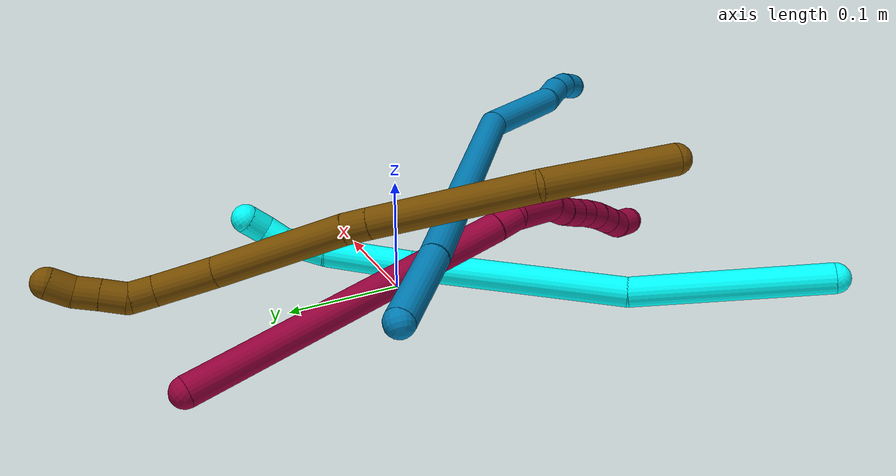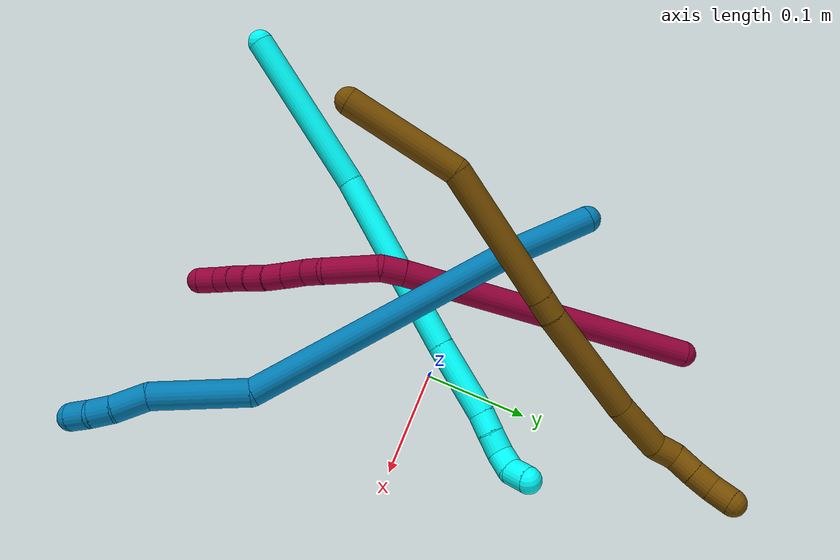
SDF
<sdf version="1.7">
 <world name="default">
  <model name="3">
   <static>0</static>
   <link name="3">
    <collision name="collision-cylinder-e_1_1_4">
     <pose>0.021062 0.045059 -0.064751 -2.53364 0.260905 -0.792243</pose>
     <geometry><cylinder><radius>0.0125</radius><length>0.163298</length></cylinder></geometry>
     <surface>
      <friction><ode><mu>1.16</mu><mu2>1.16</mu2><slip1>0</slip1><slip2>0</slip2></ode></friction>
      <contact><ode><kp>1e+06</kp><kd>1</kd><max_vel>0</max_vel><min_depth>0.001</min_depth></ode></contact>
     </surface>
    </collision>
    <visual name="visual-cylinder-e_1_1_4">
     <pose>0.021062 0.045059 -0.064751 -2.53364 0.260905 -0.792243</pose>
     <geometry><cylinder><radius>0.0125</radius><length>0.163298</length></cylinder></geometry>
     <material><ambient>0.003922 1 0.996078 1</ambient></material>
    </visual>
    <collision name="collision-cylinder-e_2_4_5">
     <pose>0.081304 0.141392 -0.19421 -2.4715 0.443092 -1.14843</pose>
     <geometry><cylinder><radius>0.0125</radius><length>0.182772</length></cylinder></geometry>
     <surface>
      <friction><ode><mu>1.16</mu><mu2>1.16</mu2><slip1>0</slip1><slip2>0</slip2></ode></friction>
      <contact><ode><kp>1e+06</kp><kd>1</kd><max_vel>0</max_vel><min_depth>0.001</min_depth></ode></contact>
     </surface>
    </collision>
    <visual name="visual-cylinder-e_2_4_5">
     <pose>0.081304 0.141392 -0.19421 -2.4715 0.443092 -1.14843</pose>
     <geometry><cylinder><radius>0.0125</radius><length>0.182772</length></cylinder></geometry>
     <material><ambient>0.003922 1 0.996078 1</ambient></material>
    </visual>
    <collision name="collision-cylinder-e_3_5_6">
     <pose>0.136883 0.214837 -0.283464 -2.40701 0.460293 -1.09397</pose>
     <geometry><cylinder><radius>0.0125</radius><length>0.073834</length></cylinder></geometry>
     <surface>
      <friction><ode><mu>1.16</mu><mu2>1.16</mu2><slip1>0</slip1><slip2>0</slip2></ode></friction>
      <contact><ode><kp>1e+06</kp><kd>1</kd><max_vel>0</max_vel><min_depth>0.001</min_depth></ode></contact>
     </surface>
    </collision>
    <visual name="visual-cylinder-e_3_5_6">
     <pose>0.136883 0.214837 -0.283464 -2.40701 0.460293 -1.09397</pose>
     <geometry><cylinder><radius>0.0125</radius><length>0.073834</length></cylinder></geometry>
     <material><ambient>0.003922 1 0.996078 1</ambient></material>
    </visual>
    <collision name="collision-cylinder-e_4_6_7">
     <pose>0.158918 0.242409 -0.31432 -2.43356 0.596106 -1.38696</pose>
     <geometry><cylinder><radius>0.0125</radius><length>0.020077</length></cylinder></geometry>
     <surface>
      <friction><ode><mu>1.16</mu><mu2>1.16</mu2><slip1>0</slip1><slip2>0</slip2></ode></friction>
      <contact><ode><kp>1e+06</kp><kd>1</kd><max_vel>0</max_vel><min_depth>0.001</min_depth></ode></contact>
     </surface>
    </collision>
    <visual name="visual-cylinder-e_4_6_7">
     <pose>0.158918 0.242409 -0.31432 -2.43356 0.596106 -1.38696</pose>
     <geometry><cylinder><radius>0.0125</radius><length>0.020077</length></cylinder></geometry>
     <material><ambient>0.003922 1 0.996078 1</ambient></material>
    </visual>
    <collision name="collision-cylinder-e_5_7_8">
     <pose>0.169442 0.253102 -0.327569 -2.49011 0.510624 -1.31579</pose>
     <geometry><cylinder><radius>0.0125</radius><length>0.020004</length></cylinder></geometry>
     <surface>
      <friction><ode><mu>1.16</mu><mu2>1.16</mu2><slip1>0</slip1><slip2>0</slip2></ode></friction>
      <contact><ode><kp>1e+06</kp><kd>1</kd><max_vel>0</max_vel><min_depth>0.001</min_depth></ode></contact>
     </surface>
    </collision>
    <visual name="visual-cylinder-e_5_7_8">
     <pose>0.169442 0.253102 -0.327569 -2.49011 0.510624 -1.31579</pose>
     <geometry><cylinder><radius>0.0125</radius><length>0.020004</length></cylinder></geometry>
     <material><ambient>0.003922 1 0.996078 1</ambient></material>
    </visual>
    <collision name="collision-cylinder-e_6_8_9">
     <pose>0.18132 0.265051 -0.33714 -1.9473 0.773395 -1.07916</pose>
     <geometry><cylinder><radius>0.0125</radius><length>0.020012</length></cylinder></geometry>
     <surface>
      <friction><ode><mu>1.16</mu><mu2>1.16</mu2><slip1>0</slip1><slip2>0</slip2></ode></friction>
      <contact><ode><kp>1e+06</kp><kd>1</kd><max_vel>0</max_vel><min_depth>0.001</min_depth></ode></contact>
     </surface>
    </collision>
    <visual name="visual-cylinder-e_6_8_9">
     <pose>0.18132 0.265051 -0.33714 -1.9473 0.773395 -1.07916</pose>
     <geometry><cylinder><radius>0.0125</radius><length>0.020012</length></cylinder></geometry>
     <material><ambient>0.003922 1 0.996078 1</ambient></material>
    </visual>
    <collision name="collision-cylinder-e_7_9_2">
     <pose>0.192648 0.280705 -0.339237 -1.51139 0.448702 -0.423597</pose>
     <geometry><cylinder><radius>0.0125</radius><length>0.020003</length></cylinder></geometry>
     <surface>
      <friction><ode><mu>1.16</mu><mu2>1.16</mu2><slip1>0</slip1><slip2>0</slip2></ode></friction>
      <contact><ode><kp>1e+06</kp><kd>1</kd><max_vel>0</max_vel><min_depth>0.001</min_depth></ode></contact>
     </surface>
    </collision>
    <visual name="visual-cylinder-e_7_9_2">
     <pose>0.192648 0.280705 -0.339237 -1.51139 0.448702 -0.423597</pose>
     <geometry><cylinder><radius>0.0125</radius><length>0.020003</length></cylinder></geometry>
     <material><ambient>0.003922 1 0.996078 1</ambient></material>
    </visual>
    <collision name="collision-sphere-2">
     <pose>0.196987 0.289701 -0.338702 0 -0 0</pose>
     <geometry><sphere><radius>0.0125</radius></sphere></geometry>
     <surface>
      <friction><ode><mu>1.16</mu><mu2>1.16</mu2><slip1>0</slip1><slip2>0</slip2></ode></friction>
      <contact><ode><kp>1e+06</kp><kd>1</kd><max_vel>0</max_vel><min_depth>0.001</min_depth></ode></contact>
     </surface>
    </collision>
    <visual name="visual-sphere-2">
     <pose>0.196987 0.289701 -0.338702 0 -0 0</pose>
     <geometry><sphere><radius>0.0125</radius></sphere></geometry>
     <material><ambient>0.003922 1 0.996078 1</ambient></material>
    </visual>
    <collision name="collision-sphere-9">
     <pose>0.18831 0.271709 -0.339772 0 -0 0</pose>
     <geometry><sphere><radius>0.0125</radius></sphere></geometry>
     <surface>
      <friction><ode><mu>1.16</mu><mu2>1.16</mu2><slip1>0</slip1><slip2>0</slip2></ode></friction>
      <contact><ode><kp>1e+06</kp><kd>1</kd><max_vel>0</max_vel><min_depth>0.001</min_depth></ode></contact>
     </surface>
    </collision>
    <visual name="visual-sphere-9">
     <pose>0.18831 0.271709 -0.339772 0 -0 0</pose>
     <geometry><sphere><radius>0.0125</radius></sphere></geometry>
     <material><ambient>0.003922 1 0.996078 1</ambient></material>
    </visual>
    <collision name="collision-sphere-4">
     <pose>0.042124 0.090117 -0.129502 0 -0 0</pose>
     <geometry><sphere><radius>0.0125</radius></sphere></geometry>
     <surface>
      <friction><ode><mu>1.16</mu><mu2>1.16</mu2><slip1>0</slip1><slip2>0</slip2></ode></friction>
      <contact><ode><kp>1e+06</kp><kd>1</kd><max_vel>0</max_vel><min_depth>0.001</min_depth></ode></contact>
     </surface>
    </collision>
    <visual name="visual-sphere-4">
     <pose>0.042124 0.090117 -0.129502 0 -0 0</pose>
     <geometry><sphere><radius>0.0125</radius></sphere></geometry>
     <material><ambient>0.003922 1 0.996078 1</ambient></material>
    </visual>
    <collision name="collision-sphere-1">
     <geometry><sphere><radius>0.0125</radius></sphere></geometry>
     <surface>
      <friction><ode><mu>1.16</mu><mu2>1.16</mu2><slip1>0</slip1><slip2>0</slip2></ode></friction>
      <contact><ode><kp>1e+06</kp><kd>1</kd><max_vel>0</max_vel><min_depth>0.001</min_depth></ode></contact>
     </surface>
    </collision>
    <visual name="visual-sphere-1">
     <geometry><sphere><radius>0.0125</radius></sphere></geometry>
     <material><ambient>0.003922 1 0.996078 1</ambient></material>
    </visual>
    <collision name="collision-sphere-8">
     <pose>0.17433 0.258393 -0.334508 0 -0 0</pose>
     <geometry><sphere><radius>0.0125</radius></sphere></geometry>
     <surface>
      <friction><ode><mu>1.16</mu><mu2>1.16</mu2><slip1>0</slip1><slip2>0</slip2></ode></friction>
      <contact><ode><kp>1e+06</kp><kd>1</kd><max_vel>0</max_vel><min_depth>0.001</min_depth></ode></contact>
     </surface>
    </collision>
    <visual name="visual-sphere-8">
     <pose>0.17433 0.258393 -0.334508 0 -0 0</pose>
     <geometry><sphere><radius>0.0125</radius></sphere></geometry>
     <material><ambient>0.003922 1 0.996078 1</ambient></material>
    </visual>
    <collision name="collision-sphere-5">
     <pose>0.120484 0.192668 -0.258919 0 -0 0</pose>
     <geometry><sphere><radius>0.0125</radius></sphere></geometry>
     <surface>
      <friction><ode><mu>1.16</mu><mu2>1.16</mu2><slip1>0</slip1><slip2>0</slip2></ode></friction>
      <contact><ode><kp>1e+06</kp><kd>1</kd><max_vel>0</max_vel><min_depth>0.001</min_depth></ode></contact>
     </surface>
    </collision>
    <visual name="visual-sphere-5">
     <pose>0.120484 0.192668 -0.258919 0 -0 0</pose>
     <geometry><sphere><radius>0.0125</radius></sphere></geometry>
     <material><ambient>0.003922 1 0.996078 1</ambient></material>
    </visual>
    <collision name="collision-sphere-6">
     <pose>0.153282 0.237006 -0.308009 0 -0 0</pose>
     <geometry><sphere><radius>0.0125</radius></sphere></geometry>
     <surface>
      <friction><ode><mu>1.16</mu><mu2>1.16</mu2><slip1>0</slip1><slip2>0</slip2></ode></friction>
      <contact><ode><kp>1e+06</kp><kd>1</kd><max_vel>0</max_vel><min_depth>0.001</min_depth></ode></contact>
     </surface>
    </collision>
    <visual name="visual-sphere-6">
     <pose>0.153282 0.237006 -0.308009 0 -0 0</pose>
     <geometry><sphere><radius>0.0125</radius></sphere></geometry>
     <material><ambient>0.003922 1 0.996078 1</ambient></material>
    </visual>
    <collision name="collision-sphere-7">
     <pose>0.164554 0.247811 -0.32063 0 -0 0</pose>
     <geometry><sphere><radius>0.0125</radius></sphere></geometry>
     <surface>
      <friction><ode><mu>1.16</mu><mu2>1.16</mu2><slip1>0</slip1><slip2>0</slip2></ode></friction>
      <contact><ode><kp>1e+06</kp><kd>1</kd><max_vel>0</max_vel><min_depth>0.001</min_depth></ode></contact>
     </surface>
    </collision>
    <visual name="visual-sphere-7">
     <pose>0.164554 0.247811 -0.32063 0 -0 0</pose>
     <geometry><sphere><radius>0.0125</radius></sphere></geometry>
     <material><ambient>0.003922 1 0.996078 1</ambient></material>
    </visual>
    <inertial>
     <pose>0.084937 0.139824 -0.18679 0 -0 0</pose>
     <mass>0.5</mass>
     <inertia>
      <ixx>-0.000238</ixx>
      <ixy>0</ixy>
      <ixz>0</ixz>
      <iyy>-0.000905</iyy>
      <iyz>0</iyz>
      <izz>-0.000881</izz>
     </inertia>
    </inertial>
   </link>
   <pose>-0.234533 -0.276831 0.055589 0.495612 -0.734322 -0.0856</pose>
  </model>
  <model name="8">
   <static>0</static>
   <link name="8">
    <collision name="collision-cylinder-e_1_1_4">
     <pose>0.00202 -0.09416 0.104857 0.731698 0.01433 0.00549</pose>
     <geometry><cylinder><radius>0.0125</radius><length>0.281887</length></cylinder></geometry>
     <surface>
      <friction><ode><mu>1.16</mu><mu2>1.16</mu2><slip1>0</slip1><slip2>0</slip2></ode></friction>
      <contact><ode><kp>1e+06</kp><kd>1</kd><max_vel>0</max_vel><min_depth>0.001</min_depth></ode></contact>
     </surface>
    </collision>
    <visual name="visual-cylinder-e_1_1_4">
     <pose>0.00202 -0.09416 0.104857 0.731698 0.01433 0.00549</pose>
     <geometry><cylinder><radius>0.0125</radius><length>0.281887</length></cylinder></geometry>
     <material><ambient>0.584314 0 0.227451 1</ambient></material>
    </visual>
    <collision name="collision-cylinder-e_2_4_5">
     <pose>0.004825 -0.195802 0.21752 0.764263 0.072517 0.029154</pose>
     <geometry><cylinder><radius>0.0125</radius><length>0.021684</length></cylinder></geometry>
     <surface>
      <friction><ode><mu>1.16</mu><mu2>1.16</mu2><slip1>0</slip1><slip2>0</slip2></ode></friction>
      <contact><ode><kp>1e+06</kp><kd>1</kd><max_vel>0</max_vel><min_depth>0.001</min_depth></ode></contact>
     </surface>
    </collision>
    <visual name="visual-cylinder-e_2_4_5">
     <pose>0.004825 -0.195802 0.21752 0.764263 0.072517 0.029154</pose>
     <geometry><cylinder><radius>0.0125</radius><length>0.021684</length></cylinder></geometry>
     <material><ambient>0.584314 0 0.227451 1</ambient></material>
    </visual>
    <collision name="collision-cylinder-e_3_5_6">
     <pose>0.007858 -0.228046 0.234905 1.20167 0.084437 0.057888</pose>
     <geometry><cylinder><radius>0.0125</radius><length>0.053288</length></cylinder></geometry>
     <surface>
      <friction><ode><mu>1.16</mu><mu2>1.16</mu2><slip1>0</slip1><slip2>0</slip2></ode></friction>
      <contact><ode><kp>1e+06</kp><kd>1</kd><max_vel>0</max_vel><min_depth>0.001</min_depth></ode></contact>
     </surface>
    </collision>
    <visual name="visual-cylinder-e_3_5_6">
     <pose>0.007858 -0.228046 0.234905 1.20167 0.084437 0.057888</pose>
     <geometry><cylinder><radius>0.0125</radius><length>0.053288</length></cylinder></geometry>
     <material><ambient>0.584314 0 0.227451 1</ambient></material>
    </visual>
    <collision name="collision-cylinder-e_4_6_7">
     <pose>0.008704 -0.262783 0.245204 1.49874 -0.139101 -0.129451</pose>
     <geometry><cylinder><radius>0.0125</radius><length>0.020198</length></cylinder></geometry>
     <surface>
      <friction><ode><mu>1.16</mu><mu2>1.16</mu2><slip1>0</slip1><slip2>0</slip2></ode></friction>
      <contact><ode><kp>1e+06</kp><kd>1</kd><max_vel>0</max_vel><min_depth>0.001</min_depth></ode></contact>
     </surface>
    </collision>
    <visual name="visual-cylinder-e_4_6_7">
     <pose>0.008704 -0.262783 0.245204 1.49874 -0.139101 -0.129451</pose>
     <geometry><cylinder><radius>0.0125</radius><length>0.020198</length></cylinder></geometry>
     <material><ambient>0.584314 0 0.227451 1</ambient></material>
    </visual>
    <collision name="collision-cylinder-e_5_7_8">
     <pose>0.007513 -0.283796 0.24755 1.42451 0.018716 0.016161</pose>
     <geometry><cylinder><radius>0.0125</radius><length>0.022317</length></cylinder></geometry>
     <surface>
      <friction><ode><mu>1.16</mu><mu2>1.16</mu2><slip1>0</slip1><slip2>0</slip2></ode></friction>
      <contact><ode><kp>1e+06</kp><kd>1</kd><max_vel>0</max_vel><min_depth>0.001</min_depth></ode></contact>
     </surface>
    </collision>
    <visual name="visual-cylinder-e_5_7_8">
     <pose>0.007513 -0.283796 0.24755 1.42451 0.018716 0.016161</pose>
     <geometry><cylinder><radius>0.0125</radius><length>0.022317</length></cylinder></geometry>
     <material><ambient>0.584314 0 0.227451 1</ambient></material>
    </visual>
    <collision name="collision-cylinder-e_6_8_9">
     <pose>0.007937 -0.304921 0.251032 1.38892 0.021028 0.017514</pose>
     <geometry><cylinder><radius>0.0125</radius><length>0.020519</length></cylinder></geometry>
     <surface>
      <friction><ode><mu>1.16</mu><mu2>1.16</mu2><slip1>0</slip1><slip2>0</slip2></ode></friction>
      <contact><ode><kp>1e+06</kp><kd>1</kd><max_vel>0</max_vel><min_depth>0.001</min_depth></ode></contact>
     </surface>
    </collision>
    <visual name="visual-cylinder-e_6_8_9">
     <pose>0.007937 -0.304921 0.251032 1.38892 0.021028 0.017514</pose>
     <geometry><cylinder><radius>0.0125</radius><length>0.020519</length></cylinder></geometry>
     <material><ambient>0.584314 0 0.227451 1</ambient></material>
    </visual>
    <collision name="collision-cylinder-e_7_9_10">
     <pose>0.007205 -0.324813 0.254697 1.38829 -0.094828 -0.078947</pose>
     <geometry><cylinder><radius>0.0125</radius><length>0.020029</length></cylinder></geometry>
     <surface>
      <friction><ode><mu>1.16</mu><mu2>1.16</mu2><slip1>0</slip1><slip2>0</slip2></ode></friction>
      <contact><ode><kp>1e+06</kp><kd>1</kd><max_vel>0</max_vel><min_depth>0.001</min_depth></ode></contact>
     </surface>
    </collision>
    <visual name="visual-cylinder-e_7_9_10">
     <pose>0.007205 -0.324813 0.254697 1.38829 -0.094828 -0.078947</pose>
     <geometry><cylinder><radius>0.0125</radius><length>0.020029</length></cylinder></geometry>
     <material><ambient>0.584314 0 0.227451 1</ambient></material>
    </visual>
    <collision name="collision-cylinder-e_8_10_11">
     <pose>0.004649 -0.344457 0.257425 1.47766 -0.161266 -0.146959</pose>
     <geometry><cylinder><radius>0.0125</radius><length>0.020025</length></cylinder></geometry>
     <surface>
      <friction><ode><mu>1.16</mu><mu2>1.16</mu2><slip1>0</slip1><slip2>0</slip2></ode></friction>
      <contact><ode><kp>1e+06</kp><kd>1</kd><max_vel>0</max_vel><min_depth>0.001</min_depth></ode></contact>
     </surface>
    </collision>
    <visual name="visual-cylinder-e_8_10_11">
     <pose>0.004649 -0.344457 0.257425 1.47766 -0.161266 -0.146959</pose>
     <geometry><cylinder><radius>0.0125</radius><length>0.020025</length></cylinder></geometry>
     <material><ambient>0.584314 0 0.227451 1</ambient></material>
    </visual>
    <collision name="collision-cylinder-e_9_11_12">
     <pose>0.001662 -0.364198 0.258966 1.50809 -0.138165 -0.129787</pose>
     <geometry><cylinder><radius>0.0125</radius><length>0.020032</length></cylinder></geometry>
     <surface>
      <friction><ode><mu>1.16</mu><mu2>1.16</mu2><slip1>0</slip1><slip2>0</slip2></ode></friction>
      <contact><ode><kp>1e+06</kp><kd>1</kd><max_vel>0</max_vel><min_depth>0.001</min_depth></ode></contact>
     </surface>
    </collision>
    <visual name="visual-cylinder-e_9_11_12">
     <pose>0.001662 -0.364198 0.258966 1.50809 -0.138165 -0.129787</pose>
     <geometry><cylinder><radius>0.0125</radius><length>0.020032</length></cylinder></geometry>
     <material><ambient>0.584314 0 0.227451 1</ambient></material>
    </visual>
    <collision name="collision-cylinder-e_10_12_2">
     <pose>0.001154 -0.38334 0.263336 1.18544 0.087175 0.058733</pose>
     <geometry><cylinder><radius>0.0125</radius><length>0.02002</length></cylinder></geometry>
     <surface>
      <friction><ode><mu>1.16</mu><mu2>1.16</mu2><slip1>0</slip1><slip2>0</slip2></ode></friction>
      <contact><ode><kp>1e+06</kp><kd>1</kd><max_vel>0</max_vel><min_depth>0.001</min_depth></ode></contact>
     </surface>
    </collision>
    <visual name="visual-cylinder-e_10_12_2">
     <pose>0.001154 -0.38334 0.263336 1.18544 0.087175 0.058733</pose>
     <geometry><cylinder><radius>0.0125</radius><length>0.02002</length></cylinder></geometry>
     <material><ambient>0.584314 0 0.227451 1</ambient></material>
    </visual>
    <collision name="collision-sphere-2">
     <pose>0.002026 -0.39258 0.267084 0 -0 0</pose>
     <geometry><sphere><radius>0.0125</radius></sphere></geometry>
     <surface>
      <friction><ode><mu>1.16</mu><mu2>1.16</mu2><slip1>0</slip1><slip2>0</slip2></ode></friction>
      <contact><ode><kp>1e+06</kp><kd>1</kd><max_vel>0</max_vel><min_depth>0.001</min_depth></ode></contact>
     </surface>
    </collision>
    <visual name="visual-sphere-2">
     <pose>0.002026 -0.39258 0.267084 0 -0 0</pose>
     <geometry><sphere><radius>0.0125</radius></sphere></geometry>
     <material><ambient>0.584314 0 0.227451 1</ambient></material>
    </visual>
    <collision name="collision-sphere-12">
     <pose>0.000282 -0.374099 0.259587 0 -0 0</pose>
     <geometry><sphere><radius>0.0125</radius></sphere></geometry>
     <surface>
      <friction><ode><mu>1.16</mu><mu2>1.16</mu2><slip1>0</slip1><slip2>0</slip2></ode></friction>
      <contact><ode><kp>1e+06</kp><kd>1</kd><max_vel>0</max_vel><min_depth>0.001</min_depth></ode></contact>
     </surface>
    </collision>
    <visual name="visual-sphere-12">
     <pose>0.000282 -0.374099 0.259587 0 -0 0</pose>
     <geometry><sphere><radius>0.0125</radius></sphere></geometry>
     <material><ambient>0.584314 0 0.227451 1</ambient></material>
    </visual>
    <collision name="collision-sphere-11">
     <pose>0.003041 -0.354297 0.258344 0 -0 0</pose>
     <geometry><sphere><radius>0.0125</radius></sphere></geometry>
     <surface>
      <friction><ode><mu>1.16</mu><mu2>1.16</mu2><slip1>0</slip1><slip2>0</slip2></ode></friction>
      <contact><ode><kp>1e+06</kp><kd>1</kd><max_vel>0</max_vel><min_depth>0.001</min_depth></ode></contact>
     </surface>
    </collision>
    <visual name="visual-sphere-11">
     <pose>0.003041 -0.354297 0.258344 0 -0 0</pose>
     <geometry><sphere><radius>0.0125</radius></sphere></geometry>
     <material><ambient>0.584314 0 0.227451 1</ambient></material>
    </visual>
    <collision name="collision-sphere-10">
     <pose>0.006257 -0.334617 0.256506 0 -0 0</pose>
     <geometry><sphere><radius>0.0125</radius></sphere></geometry>
     <surface>
      <friction><ode><mu>1.16</mu><mu2>1.16</mu2><slip1>0</slip1><slip2>0</slip2></ode></friction>
      <contact><ode><kp>1e+06</kp><kd>1</kd><max_vel>0</max_vel><min_depth>0.001</min_depth></ode></contact>
     </surface>
    </collision>
    <visual name="visual-sphere-10">
     <pose>0.006257 -0.334617 0.256506 0 -0 0</pose>
     <geometry><sphere><radius>0.0125</radius></sphere></geometry>
     <material><ambient>0.584314 0 0.227451 1</ambient></material>
    </visual>
    <collision name="collision-sphere-9">
     <pose>0.008153 -0.31501 0.252887 0 -0 0</pose>
     <geometry><sphere><radius>0.0125</radius></sphere></geometry>
     <surface>
      <friction><ode><mu>1.16</mu><mu2>1.16</mu2><slip1>0</slip1><slip2>0</slip2></ode></friction>
      <contact><ode><kp>1e+06</kp><kd>1</kd><max_vel>0</max_vel><min_depth>0.001</min_depth></ode></contact>
     </surface>
    </collision>
    <visual name="visual-sphere-9">
     <pose>0.008153 -0.31501 0.252887 0 -0 0</pose>
     <geometry><sphere><radius>0.0125</radius></sphere></geometry>
     <material><ambient>0.584314 0 0.227451 1</ambient></material>
    </visual>
    <collision name="collision-sphere-4">
     <pose>0.004039 -0.188319 0.209714 0 -0 0</pose>
     <geometry><sphere><radius>0.0125</radius></sphere></geometry>
     <surface>
      <friction><ode><mu>1.16</mu><mu2>1.16</mu2><slip1>0</slip1><slip2>0</slip2></ode></friction>
      <contact><ode><kp>1e+06</kp><kd>1</kd><max_vel>0</max_vel><min_depth>0.001</min_depth></ode></contact>
     </surface>
    </collision>
    <visual name="visual-sphere-4">
     <pose>0.004039 -0.188319 0.209714 0 -0 0</pose>
     <geometry><sphere><radius>0.0125</radius></sphere></geometry>
     <material><ambient>0.584314 0 0.227451 1</ambient></material>
    </visual>
    <collision name="collision-sphere-1">
     <geometry><sphere><radius>0.0125</radius></sphere></geometry>
     <surface>
      <friction><ode><mu>1.16</mu><mu2>1.16</mu2><slip1>0</slip1><slip2>0</slip2></ode></friction>
      <contact><ode><kp>1e+06</kp><kd>1</kd><max_vel>0</max_vel><min_depth>0.001</min_depth></ode></contact>
     </surface>
    </collision>
    <visual name="visual-sphere-1">
     <geometry><sphere><radius>0.0125</radius></sphere></geometry>
     <material><ambient>0.584314 0 0.227451 1</ambient></material>
    </visual>
    <collision name="collision-sphere-8">
     <pose>0.007722 -0.294833 0.249177 0 -0 0</pose>
     <geometry><sphere><radius>0.0125</radius></sphere></geometry>
     <surface>
      <friction><ode><mu>1.16</mu><mu2>1.16</mu2><slip1>0</slip1><slip2>0</slip2></ode></friction>
      <contact><ode><kp>1e+06</kp><kd>1</kd><max_vel>0</max_vel><min_depth>0.001</min_depth></ode></contact>
     </surface>
    </collision>
    <visual name="visual-sphere-8">
     <pose>0.007722 -0.294833 0.249177 0 -0 0</pose>
     <geometry><sphere><radius>0.0125</radius></sphere></geometry>
     <material><ambient>0.584314 0 0.227451 1</ambient></material>
    </visual>
    <collision name="collision-sphere-5">
     <pose>0.00561 -0.203285 0.225326 0 -0 0</pose>
     <geometry><sphere><radius>0.0125</radius></sphere></geometry>
     <surface>
      <friction><ode><mu>1.16</mu><mu2>1.16</mu2><slip1>0</slip1><slip2>0</slip2></ode></friction>
      <contact><ode><kp>1e+06</kp><kd>1</kd><max_vel>0</max_vel><min_depth>0.001</min_depth></ode></contact>
     </surface>
    </collision>
    <visual name="visual-sphere-5">
     <pose>0.00561 -0.203285 0.225326 0 -0 0</pose>
     <geometry><sphere><radius>0.0125</radius></sphere></geometry>
     <material><ambient>0.584314 0 0.227451 1</ambient></material>
    </visual>
    <collision name="collision-sphere-6">
     <pose>0.010105 -0.252807 0.244484 0 -0 0</pose>
     <geometry><sphere><radius>0.0125</radius></sphere></geometry>
     <surface>
      <friction><ode><mu>1.16</mu><mu2>1.16</mu2><slip1>0</slip1><slip2>0</slip2></ode></friction>
      <contact><ode><kp>1e+06</kp><kd>1</kd><max_vel>0</max_vel><min_depth>0.001</min_depth></ode></contact>
     </surface>
    </collision>
    <visual name="visual-sphere-6">
     <pose>0.010105 -0.252807 0.244484 0 -0 0</pose>
     <geometry><sphere><radius>0.0125</radius></sphere></geometry>
     <material><ambient>0.584314 0 0.227451 1</ambient></material>
    </visual>
    <collision name="collision-sphere-7">
     <pose>0.007304 -0.272758 0.245924 0 -0 0</pose>
     <geometry><sphere><radius>0.0125</radius></sphere></geometry>
     <surface>
      <friction><ode><mu>1.16</mu><mu2>1.16</mu2><slip1>0</slip1><slip2>0</slip2></ode></friction>
      <contact><ode><kp>1e+06</kp><kd>1</kd><max_vel>0</max_vel><min_depth>0.001</min_depth></ode></contact>
     </surface>
    </collision>
    <visual name="visual-sphere-7">
     <pose>0.007304 -0.272758 0.245924 0 -0 0</pose>
     <geometry><sphere><radius>0.0125</radius></sphere></geometry>
     <material><ambient>0.584314 0 0.227451 1</ambient></material>
    </visual>
    <inertial>
     <pose>0.003786 -0.178424 0.166273 0 -0 0</pose>
     <mass>0.5</mass>
     <inertia>
      <ixx>0.001915</ixx>
      <ixy>0</ixy>
      <ixz>0</ixz>
      <iyy>0.001385</iyy>
      <iyz>0</iyz>
      <izz>0.001273</izz>
     </inertia>
    </inertial>
   </link>
   <pose>-0.112766 0.216704 0.02361 0.627202 -0.468445 0.224783</pose>
  </model>
  <model name="9">
   <static>0</static>
   <link name="9">
    <collision name="collision-cylinder-e_1_1_4">
     <pose>0.028176 -0.005378 0.029554 0.180013 0.753402 0.071375</pose>
     <geometry><cylinder><radius>0.0125</radius><length>0.082371</length></cylinder></geometry>
     <surface>
      <friction><ode><mu>1.16</mu><mu2>1.16</mu2><slip1>0</slip1><slip2>0</slip2></ode></friction>
      <contact><ode><kp>1e+06</kp><kd>1</kd><max_vel>0</max_vel><min_depth>0.001</min_depth></ode></contact>
     </surface>
    </collision>
    <visual name="visual-cylinder-e_1_1_4">
     <pose>0.028176 -0.005378 0.029554 0.180013 0.753402 0.071375</pose>
     <geometry><cylinder><radius>0.0125</radius><length>0.082371</length></cylinder></geometry>
     <material><ambient>0 0.490196 0.709804 1</ambient></material>
    </visual>
    <collision name="collision-cylinder-e_2_4_5">
     <pose>0.146737 -0.01459 0.149893 0.042194 0.78274 0.017414</pose>
     <geometry><cylinder><radius>0.0125</radius><length>0.256328</length></cylinder></geometry>
     <surface>
      <friction><ode><mu>1.16</mu><mu2>1.16</mu2><slip1>0</slip1><slip2>0</slip2></ode></friction>
      <contact><ode><kp>1e+06</kp><kd>1</kd><max_vel>0</max_vel><min_depth>0.001</min_depth></ode></contact>
     </surface>
    </collision>
    <visual name="visual-cylinder-e_2_4_5">
     <pose>0.146737 -0.01459 0.149893 0.042194 0.78274 0.017414</pose>
     <geometry><cylinder><radius>0.0125</radius><length>0.256328</length></cylinder></geometry>
     <material><ambient>0 0.490196 0.709804 1</ambient></material>
    </visual>
    <collision name="collision-cylinder-e_3_5_6">
     <pose>0.273602 -0.035679 0.259812 0.733883 0.95587 0.393037</pose>
     <geometry><cylinder><radius>0.0125</radius><length>0.089326</length></cylinder></geometry>
     <surface>
      <friction><ode><mu>1.16</mu><mu2>1.16</mu2><slip1>0</slip1><slip2>0</slip2></ode></friction>
      <contact><ode><kp>1e+06</kp><kd>1</kd><max_vel>0</max_vel><min_depth>0.001</min_depth></ode></contact>
     </surface>
    </collision>
    <visual name="visual-cylinder-e_3_5_6">
     <pose>0.273602 -0.035679 0.259812 0.733883 0.95587 0.393037</pose>
     <geometry><cylinder><radius>0.0125</radius><length>0.089326</length></cylinder></geometry>
     <material><ambient>0 0.490196 0.709804 1</ambient></material>
    </visual>
    <collision name="collision-cylinder-e_4_6_7">
     <pose>0.322006 -0.055272 0.288923 0.229944 0.860786 0.105935</pose>
     <geometry><cylinder><radius>0.0125</radius><length>0.031442</length></cylinder></geometry>
     <surface>
      <friction><ode><mu>1.16</mu><mu2>1.16</mu2><slip1>0</slip1><slip2>0</slip2></ode></friction>
      <contact><ode><kp>1e+06</kp><kd>1</kd><max_vel>0</max_vel><min_depth>0.001</min_depth></ode></contact>
     </surface>
    </collision>
    <visual name="visual-cylinder-e_4_6_7">
     <pose>0.322006 -0.055272 0.288923 0.229944 0.860786 0.105935</pose>
     <geometry><cylinder><radius>0.0125</radius><length>0.031442</length></cylinder></geometry>
     <material><ambient>0 0.490196 0.709804 1</ambient></material>
    </visual>
    <collision name="collision-cylinder-e_5_7_8">
     <pose>0.342505 -0.059823 0.303903 0.416884 1.00301 0.230898</pose>
     <geometry><cylinder><radius>0.0125</radius><length>0.020347</length></cylinder></geometry>
     <surface>
      <friction><ode><mu>1.16</mu><mu2>1.16</mu2><slip1>0</slip1><slip2>0</slip2></ode></friction>
      <contact><ode><kp>1e+06</kp><kd>1</kd><max_vel>0</max_vel><min_depth>0.001</min_depth></ode></contact>
     </surface>
    </collision>
    <visual name="visual-cylinder-e_5_7_8">
     <pose>0.342505 -0.059823 0.303903 0.416884 1.00301 0.230898</pose>
     <geometry><cylinder><radius>0.0125</radius><length>0.020347</length></cylinder></geometry>
     <material><ambient>0 0.490196 0.709804 1</ambient></material>
    </visual>
    <collision name="collision-cylinder-e_6_8_2">
     <pose>0.360744 -0.063366 0.311504 0.472634 1.27752 0.353929</pose>
     <geometry><cylinder><radius>0.0125</radius><length>0.020186</length></cylinder></geometry>
     <surface>
      <friction><ode><mu>1.16</mu><mu2>1.16</mu2><slip1>0</slip1><slip2>0</slip2></ode></friction>
      <contact><ode><kp>1e+06</kp><kd>1</kd><max_vel>0</max_vel><min_depth>0.001</min_depth></ode></contact>
     </surface>
    </collision>
    <visual name="visual-cylinder-e_6_8_2">
     <pose>0.360744 -0.063366 0.311504 0.472634 1.27752 0.353929</pose>
     <geometry><cylinder><radius>0.0125</radius><length>0.020186</length></cylinder></geometry>
     <material><ambient>0 0.490196 0.709804 1</ambient></material>
    </visual>
    <collision name="collision-sphere-2">
     <pose>0.370406 -0.064695 0.314102 0 -0 0</pose>
     <geometry><sphere><radius>0.0125</radius></sphere></geometry>
     <surface>
      <friction><ode><mu>1.16</mu><mu2>1.16</mu2><slip1>0</slip1><slip2>0</slip2></ode></friction>
      <contact><ode><kp>1e+06</kp><kd>1</kd><max_vel>0</max_vel><min_depth>0.001</min_depth></ode></contact>
     </surface>
    </collision>
    <visual name="visual-sphere-2">
     <pose>0.370406 -0.064695 0.314102 0 -0 0</pose>
     <geometry><sphere><radius>0.0125</radius></sphere></geometry>
     <material><ambient>0 0.490196 0.709804 1</ambient></material>
    </visual>
    <collision name="collision-sphere-4">
     <pose>0.056352 -0.010757 0.059108 0 -0 0</pose>
     <geometry><sphere><radius>0.0125</radius></sphere></geometry>
     <surface>
      <friction><ode><mu>1.16</mu><mu2>1.16</mu2><slip1>0</slip1><slip2>0</slip2></ode></friction>
      <contact><ode><kp>1e+06</kp><kd>1</kd><max_vel>0</max_vel><min_depth>0.001</min_depth></ode></contact>
     </surface>
    </collision>
    <visual name="visual-sphere-4">
     <pose>0.056352 -0.010757 0.059108 0 -0 0</pose>
     <geometry><sphere><radius>0.0125</radius></sphere></geometry>
     <material><ambient>0 0.490196 0.709804 1</ambient></material>
    </visual>
    <collision name="collision-sphere-1">
     <geometry><sphere><radius>0.0125</radius></sphere></geometry>
     <surface>
      <friction><ode><mu>1.16</mu><mu2>1.16</mu2><slip1>0</slip1><slip2>0</slip2></ode></friction>
      <contact><ode><kp>1e+06</kp><kd>1</kd><max_vel>0</max_vel><min_depth>0.001</min_depth></ode></contact>
     </surface>
    </collision>
    <visual name="visual-sphere-1">
     <geometry><sphere><radius>0.0125</radius></sphere></geometry>
     <material><ambient>0 0.490196 0.709804 1</ambient></material>
    </visual>
    <collision name="collision-sphere-8">
     <pose>0.351082 -0.062038 0.308906 0 -0 0</pose>
     <geometry><sphere><radius>0.0125</radius></sphere></geometry>
     <surface>
      <friction><ode><mu>1.16</mu><mu2>1.16</mu2><slip1>0</slip1><slip2>0</slip2></ode></friction>
      <contact><ode><kp>1e+06</kp><kd>1</kd><max_vel>0</max_vel><min_depth>0.001</min_depth></ode></contact>
     </surface>
    </collision>
    <visual name="visual-sphere-8">
     <pose>0.351082 -0.062038 0.308906 0 -0 0</pose>
     <geometry><sphere><radius>0.0125</radius></sphere></geometry>
     <material><ambient>0 0.490196 0.709804 1</ambient></material>
    </visual>
    <collision name="collision-sphere-5">
     <pose>0.237121 -0.018422 0.240679 0 -0 0</pose>
     <geometry><sphere><radius>0.0125</radius></sphere></geometry>
     <surface>
      <friction><ode><mu>1.16</mu><mu2>1.16</mu2><slip1>0</slip1><slip2>0</slip2></ode></friction>
      <contact><ode><kp>1e+06</kp><kd>1</kd><max_vel>0</max_vel><min_depth>0.001</min_depth></ode></contact>
     </surface>
    </collision>
    <visual name="visual-sphere-5">
     <pose>0.237121 -0.018422 0.240679 0 -0 0</pose>
     <geometry><sphere><radius>0.0125</radius></sphere></geometry>
     <material><ambient>0 0.490196 0.709804 1</ambient></material>
    </visual>
    <collision name="collision-sphere-6">
     <pose>0.310084 -0.052936 0.278945 0 -0 0</pose>
     <geometry><sphere><radius>0.0125</radius></sphere></geometry>
     <surface>
      <friction><ode><mu>1.16</mu><mu2>1.16</mu2><slip1>0</slip1><slip2>0</slip2></ode></friction>
      <contact><ode><kp>1e+06</kp><kd>1</kd><max_vel>0</max_vel><min_depth>0.001</min_depth></ode></contact>
     </surface>
    </collision>
    <visual name="visual-sphere-6">
     <pose>0.310084 -0.052936 0.278945 0 -0 0</pose>
     <geometry><sphere><radius>0.0125</radius></sphere></geometry>
     <material><ambient>0 0.490196 0.709804 1</ambient></material>
    </visual>
    <collision name="collision-sphere-7">
     <pose>0.333928 -0.057608 0.298901 0 -0 0</pose>
     <geometry><sphere><radius>0.0125</radius></sphere></geometry>
     <surface>
      <friction><ode><mu>1.16</mu><mu2>1.16</mu2><slip1>0</slip1><slip2>0</slip2></ode></friction>
      <contact><ode><kp>1e+06</kp><kd>1</kd><max_vel>0</max_vel><min_depth>0.001</min_depth></ode></contact>
     </surface>
    </collision>
    <visual name="visual-sphere-7">
     <pose>0.333928 -0.057608 0.298901 0 -0 0</pose>
     <geometry><sphere><radius>0.0125</radius></sphere></geometry>
     <material><ambient>0 0.490196 0.709804 1</ambient></material>
    </visual>
    <inertial>
     <pose>0.177498 -0.023208 0.17124 0 -0 0</pose>
     <mass>0.5</mass>
     <inertia>
      <ixx>0.001139</ixx>
      <ixy>0</ixy>
      <ixz>0</ixz>
      <iyy>0.001555</iyy>
      <iyz>0</iyz>
      <izz>-0.000989</izz>
     </inertia>
    </inertial>
   </link>
   <pose>-0.18388 0.078965 0.082921 -0.691149 0.626162 -1.115</pose>
  </model>
  <model name="12">
   <static>0</static>
   <link name="12">
    <collision name="collision-cylinder-e_1_1_4">
     <pose>-0.005841 0.017585 0.051136 -0.331213 -0.107602 0.018001</pose>
     <geometry><cylinder><radius>0.0125</radius><length>0.10878</length></cylinder></geometry>
     <surface>
      <friction><ode><mu>1.16</mu><mu2>1.16</mu2><slip1>0</slip1><slip2>0</slip2></ode></friction>
      <contact><ode><kp>1e+06</kp><kd>1</kd><max_vel>0</max_vel><min_depth>0.001</min_depth></ode></contact>
     </surface>
    </collision>
    <visual name="visual-cylinder-e_1_1_4">
     <pose>-0.005841 0.017585 0.051136 -0.331213 -0.107602 0.018001</pose>
     <geometry><cylinder><radius>0.0125</radius><length>0.10878</length></cylinder></geometry>
     <material><ambient>0.466667 0.301961 0 1</ambient></material>
    </visual>
    <collision name="collision-cylinder-e_2_4_5">
     <pose>0.008137 0.061097 0.159147 -0.427729 0.307048 -0.06719</pose>
     <geometry><cylinder><radius>0.0125</radius><length>0.131145</length></cylinder></geometry>
     <surface>
      <friction><ode><mu>1.16</mu><mu2>1.16</mu2><slip1>0</slip1><slip2>0</slip2></ode></friction>
      <contact><ode><kp>1e+06</kp><kd>1</kd><max_vel>0</max_vel><min_depth>0.001</min_depth></ode></contact>
     </surface>
    </collision>
    <visual name="visual-cylinder-e_2_4_5">
     <pose>0.008137 0.061097 0.159147 -0.427729 0.307048 -0.06719</pose>
     <geometry><cylinder><radius>0.0125</radius><length>0.131145</length></cylinder></geometry>
     <material><ambient>0.466667 0.301961 0 1</ambient></material>
    </visual>
    <collision name="collision-cylinder-e_3_5_6">
     <pose>0.031093 0.091126 0.224761 -0.43881 0.314261 -0.070632</pose>
     <geometry><cylinder><radius>0.0125</radius><length>0.020302</length></cylinder></geometry>
     <surface>
      <friction><ode><mu>1.16</mu><mu2>1.16</mu2><slip1>0</slip1><slip2>0</slip2></ode></friction>
      <contact><ode><kp>1e+06</kp><kd>1</kd><max_vel>0</max_vel><min_depth>0.001</min_depth></ode></contact>
     </surface>
    </collision>
    <visual name="visual-cylinder-e_3_5_6">
     <pose>0.031093 0.091126 0.224761 -0.43881 0.314261 -0.070632</pose>
     <geometry><cylinder><radius>0.0125</radius><length>0.020302</length></cylinder></geometry>
     <material><ambient>0.466667 0.301961 0 1</ambient></material>
    </visual>
    <collision name="collision-cylinder-e_4_6_7">
     <pose>0.047351 0.121083 0.278487 -0.521626 0.247657 -0.066413</pose>
     <geometry><cylinder><radius>0.0125</radius><length>0.10704</length></cylinder></geometry>
     <surface>
      <friction><ode><mu>1.16</mu><mu2>1.16</mu2><slip1>0</slip1><slip2>0</slip2></ode></friction>
      <contact><ode><kp>1e+06</kp><kd>1</kd><max_vel>0</max_vel><min_depth>0.001</min_depth></ode></contact>
     </surface>
    </collision>
    <visual name="visual-cylinder-e_4_6_7">
     <pose>0.047351 0.121083 0.278487 -0.521626 0.247657 -0.066413</pose>
     <geometry><cylinder><radius>0.0125</radius><length>0.10704</length></cylinder></geometry>
     <material><ambient>0.466667 0.301961 0 1</ambient></material>
    </visual>
    <collision name="collision-cylinder-e_5_7_8">
     <pose>0.06477 0.158537 0.345313 -0.488231 0.172143 -0.042977</pose>
     <geometry><cylinder><radius>0.0125</radius><length>0.0502</length></cylinder></geometry>
     <surface>
      <friction><ode><mu>1.16</mu><mu2>1.16</mu2><slip1>0</slip1><slip2>0</slip2></ode></friction>
      <contact><ode><kp>1e+06</kp><kd>1</kd><max_vel>0</max_vel><min_depth>0.001</min_depth></ode></contact>
     </surface>
    </collision>
    <visual name="visual-cylinder-e_5_7_8">
     <pose>0.06477 0.158537 0.345313 -0.488231 0.172143 -0.042977</pose>
     <geometry><cylinder><radius>0.0125</radius><length>0.0502</length></cylinder></geometry>
     <material><ambient>0.466667 0.301961 0 1</ambient></material>
    </visual>
    <collision name="collision-cylinder-e_6_8_9">
     <pose>0.06708 0.174184 0.37654 -0.407134 -0.192194 0.039791</pose>
     <geometry><cylinder><radius>0.0125</radius><length>0.020829</length></cylinder></geometry>
     <surface>
      <friction><ode><mu>1.16</mu><mu2>1.16</mu2><slip1>0</slip1><slip2>0</slip2></ode></friction>
      <contact><ode><kp>1e+06</kp><kd>1</kd><max_vel>0</max_vel><min_depth>0.001</min_depth></ode></contact>
     </surface>
    </collision>
    <visual name="visual-cylinder-e_6_8_9">
     <pose>0.06708 0.174184 0.37654 -0.407134 -0.192194 0.039791</pose>
     <geometry><cylinder><radius>0.0125</radius><length>0.020829</length></cylinder></geometry>
     <material><ambient>0.466667 0.301961 0 1</ambient></material>
    </visual>
    <collision name="collision-cylinder-e_7_9_10">
     <pose>0.065253 0.178295 0.396439 -0.005988 0.015485 -4.6e-05</pose>
     <geometry><cylinder><radius>0.0125</radius><length>0.021028</length></cylinder></geometry>
     <surface>
      <friction><ode><mu>1.16</mu><mu2>1.16</mu2><slip1>0</slip1><slip2>0</slip2></ode></friction>
      <contact><ode><kp>1e+06</kp><kd>1</kd><max_vel>0</max_vel><min_depth>0.001</min_depth></ode></contact>
     </surface>
    </collision>
    <visual name="visual-cylinder-e_7_9_10">
     <pose>0.065253 0.178295 0.396439 -0.005988 0.015485 -4.6e-05</pose>
     <geometry><cylinder><radius>0.0125</radius><length>0.021028</length></cylinder></geometry>
     <material><ambient>0.466667 0.301961 0 1</ambient></material>
    </visual>
    <collision name="collision-cylinder-e_8_10_11">
     <pose>0.064977 0.178578 0.417032 -0.021772 -0.043536 0.000474</pose>
     <geometry><cylinder><radius>0.0125</radius><length>0.020185</length></cylinder></geometry>
     <surface>
      <friction><ode><mu>1.16</mu><mu2>1.16</mu2><slip1>0</slip1><slip2>0</slip2></ode></friction>
      <contact><ode><kp>1e+06</kp><kd>1</kd><max_vel>0</max_vel><min_depth>0.001</min_depth></ode></contact>
     </surface>
    </collision>
    <visual name="visual-cylinder-e_8_10_11">
     <pose>0.064977 0.178578 0.417032 -0.021772 -0.043536 0.000474</pose>
     <geometry><cylinder><radius>0.0125</radius><length>0.020185</length></cylinder></geometry>
     <material><ambient>0.466667 0.301961 0 1</ambient></material>
    </visual>
    <collision name="collision-cylinder-e_9_11_2">
     <pose>0.062898 0.176505 0.436963 0.228588 -0.1607 -0.018487</pose>
     <geometry><cylinder><radius>0.0125</radius><length>0.020492</length></cylinder></geometry>
     <surface>
      <friction><ode><mu>1.16</mu><mu2>1.16</mu2><slip1>0</slip1><slip2>0</slip2></ode></friction>
      <contact><ode><kp>1e+06</kp><kd>1</kd><max_vel>0</max_vel><min_depth>0.001</min_depth></ode></contact>
     </surface>
    </collision>
    <visual name="visual-cylinder-e_9_11_2">
     <pose>0.062898 0.176505 0.436963 0.228588 -0.1607 -0.018487</pose>
     <geometry><cylinder><radius>0.0125</radius><length>0.020492</length></cylinder></geometry>
     <material><ambient>0.466667 0.301961 0 1</ambient></material>
    </visual>
    <collision name="collision-sphere-2">
     <pose>0.061259 0.174214 0.446814 0 -0 0</pose>
     <geometry><sphere><radius>0.0125</radius></sphere></geometry>
     <surface>
      <friction><ode><mu>1.16</mu><mu2>1.16</mu2><slip1>0</slip1><slip2>0</slip2></ode></friction>
      <contact><ode><kp>1e+06</kp><kd>1</kd><max_vel>0</max_vel><min_depth>0.001</min_depth></ode></contact>
     </surface>
    </collision>
    <visual name="visual-sphere-2">
     <pose>0.061259 0.174214 0.446814 0 -0 0</pose>
     <geometry><sphere><radius>0.0125</radius></sphere></geometry>
     <material><ambient>0.466667 0.301961 0 1</ambient></material>
    </visual>
    <collision name="collision-sphere-11">
     <pose>0.064538 0.178797 0.427112 0 -0 0</pose>
     <geometry><sphere><radius>0.0125</radius></sphere></geometry>
     <surface>
      <friction><ode><mu>1.16</mu><mu2>1.16</mu2><slip1>0</slip1><slip2>0</slip2></ode></friction>
      <contact><ode><kp>1e+06</kp><kd>1</kd><max_vel>0</max_vel><min_depth>0.001</min_depth></ode></contact>
     </surface>
    </collision>
    <visual name="visual-sphere-11">
     <pose>0.064538 0.178797 0.427112 0 -0 0</pose>
     <geometry><sphere><radius>0.0125</radius></sphere></geometry>
     <material><ambient>0.466667 0.301961 0 1</ambient></material>
    </visual>
    <collision name="collision-sphere-10">
     <pose>0.065416 0.178358 0.406951 0 -0 0</pose>
     <geometry><sphere><radius>0.0125</radius></sphere></geometry>
     <surface>
      <friction><ode><mu>1.16</mu><mu2>1.16</mu2><slip1>0</slip1><slip2>0</slip2></ode></friction>
      <contact><ode><kp>1e+06</kp><kd>1</kd><max_vel>0</max_vel><min_depth>0.001</min_depth></ode></contact>
     </surface>
    </collision>
    <visual name="visual-sphere-10">
     <pose>0.065416 0.178358 0.406951 0 -0 0</pose>
     <geometry><sphere><radius>0.0125</radius></sphere></geometry>
     <material><ambient>0.466667 0.301961 0 1</ambient></material>
    </visual>
    <collision name="collision-sphere-9">
     <pose>0.06509 0.178232 0.385927 0 -0 0</pose>
     <geometry><sphere><radius>0.0125</radius></sphere></geometry>
     <surface>
      <friction><ode><mu>1.16</mu><mu2>1.16</mu2><slip1>0</slip1><slip2>0</slip2></ode></friction>
      <contact><ode><kp>1e+06</kp><kd>1</kd><max_vel>0</max_vel><min_depth>0.001</min_depth></ode></contact>
     </surface>
    </collision>
    <visual name="visual-sphere-9">
     <pose>0.06509 0.178232 0.385927 0 -0 0</pose>
     <geometry><sphere><radius>0.0125</radius></sphere></geometry>
     <material><ambient>0.466667 0.301961 0 1</ambient></material>
    </visual>
    <collision name="collision-sphere-4">
     <pose>-0.011682 0.03517 0.102273 0 -0 0</pose>
     <geometry><sphere><radius>0.0125</radius></sphere></geometry>
     <surface>
      <friction><ode><mu>1.16</mu><mu2>1.16</mu2><slip1>0</slip1><slip2>0</slip2></ode></friction>
      <contact><ode><kp>1e+06</kp><kd>1</kd><max_vel>0</max_vel><min_depth>0.001</min_depth></ode></contact>
     </surface>
    </collision>
    <visual name="visual-sphere-4">
     <pose>-0.011682 0.03517 0.102273 0 -0 0</pose>
     <geometry><sphere><radius>0.0125</radius></sphere></geometry>
     <material><ambient>0.466667 0.301961 0 1</ambient></material>
    </visual>
    <collision name="collision-sphere-1">
     <geometry><sphere><radius>0.0125</radius></sphere></geometry>
     <surface>
      <friction><ode><mu>1.16</mu><mu2>1.16</mu2><slip1>0</slip1><slip2>0</slip2></ode></friction>
      <contact><ode><kp>1e+06</kp><kd>1</kd><max_vel>0</max_vel><min_depth>0.001</min_depth></ode></contact>
     </surface>
    </collision>
    <visual name="visual-sphere-1">
     <geometry><sphere><radius>0.0125</radius></sphere></geometry>
     <material><ambient>0.466667 0.301961 0 1</ambient></material>
    </visual>
    <collision name="collision-sphere-8">
     <pose>0.069069 0.170136 0.367152 0 -0 0</pose>
     <geometry><sphere><radius>0.0125</radius></sphere></geometry>
     <surface>
      <friction><ode><mu>1.16</mu><mu2>1.16</mu2><slip1>0</slip1><slip2>0</slip2></ode></friction>
      <contact><ode><kp>1e+06</kp><kd>1</kd><max_vel>0</max_vel><min_depth>0.001</min_depth></ode></contact>
     </surface>
    </collision>
    <visual name="visual-sphere-8">
     <pose>0.069069 0.170136 0.367152 0 -0 0</pose>
     <geometry><sphere><radius>0.0125</radius></sphere></geometry>
     <material><ambient>0.466667 0.301961 0 1</ambient></material>
    </visual>
    <collision name="collision-sphere-5">
     <pose>0.027956 0.087025 0.216022 0 -0 0</pose>
     <geometry><sphere><radius>0.0125</radius></sphere></geometry>
     <surface>
      <friction><ode><mu>1.16</mu><mu2>1.16</mu2><slip1>0</slip1><slip2>0</slip2></ode></friction>
      <contact><ode><kp>1e+06</kp><kd>1</kd><max_vel>0</max_vel><min_depth>0.001</min_depth></ode></contact>
     </surface>
    </collision>
    <visual name="visual-sphere-5">
     <pose>0.027956 0.087025 0.216022 0 -0 0</pose>
     <geometry><sphere><radius>0.0125</radius></sphere></geometry>
     <material><ambient>0.466667 0.301961 0 1</ambient></material>
    </visual>
    <collision name="collision-sphere-6">
     <pose>0.034231 0.095228 0.2335 0 -0 0</pose>
     <geometry><sphere><radius>0.0125</radius></sphere></geometry>
     <surface>
      <friction><ode><mu>1.16</mu><mu2>1.16</mu2><slip1>0</slip1><slip2>0</slip2></ode></friction>
      <contact><ode><kp>1e+06</kp><kd>1</kd><max_vel>0</max_vel><min_depth>0.001</min_depth></ode></contact>
     </surface>
    </collision>
    <visual name="visual-sphere-6">
     <pose>0.034231 0.095228 0.2335 0 -0 0</pose>
     <geometry><sphere><radius>0.0125</radius></sphere></geometry>
     <material><ambient>0.466667 0.301961 0 1</ambient></material>
    </visual>
    <collision name="collision-sphere-7">
     <pose>0.06047 0.146938 0.323473 0 -0 0</pose>
     <geometry><sphere><radius>0.0125</radius></sphere></geometry>
     <surface>
      <friction><ode><mu>1.16</mu><mu2>1.16</mu2><slip1>0</slip1><slip2>0</slip2></ode></friction>
      <contact><ode><kp>1e+06</kp><kd>1</kd><max_vel>0</max_vel><min_depth>0.001</min_depth></ode></contact>
     </surface>
    </collision>
    <visual name="visual-sphere-7">
     <pose>0.06047 0.146938 0.323473 0 -0 0</pose>
     <geometry><sphere><radius>0.0125</radius></sphere></geometry>
     <material><ambient>0.466667 0.301961 0 1</ambient></material>
    </visual>
    <inertial>
     <pose>0.029505 0.094587 0.223384 0 -0 0</pose>
     <mass>0.5</mass>
     <inertia>
      <ixx>0.000404</ixx>
      <ixy>0</ixy>
      <ixz>0</ixz>
      <iyy>0.00039</iyy>
      <iyz>0</iyz>
      <izz>-0.00021</izz>
     </inertia>
    </inertial>
   </link>
   <pose>-0.179728 -0.151674 0.160598 -1.35069 0.293902 -0.313635</pose>
  </model>
 </world>
</sdf>
